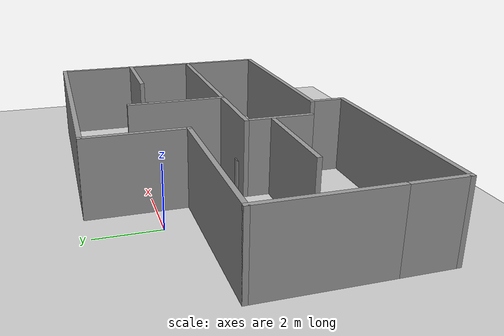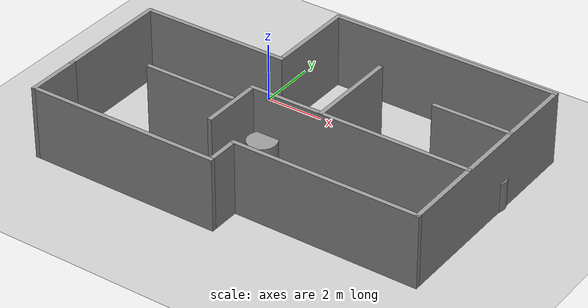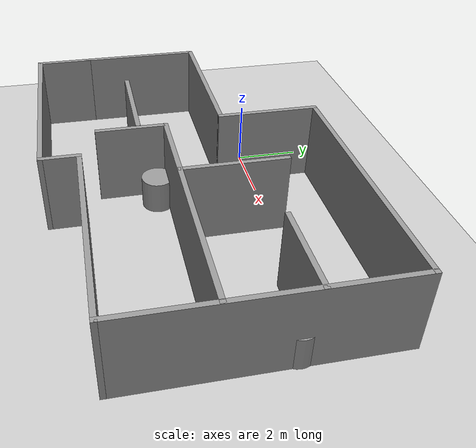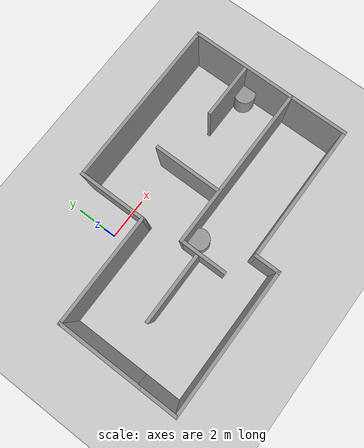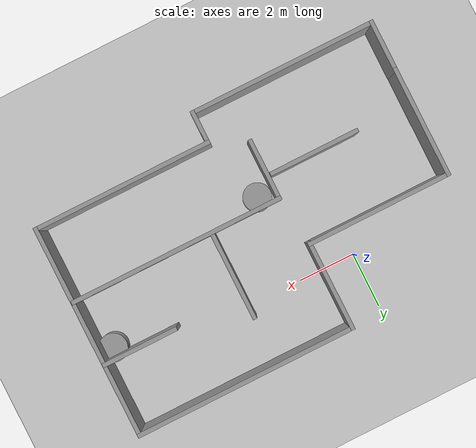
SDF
<sdf version="1.7">
 <world name="default">
  <light name="sun" type="directional">
   <pose>0 0 10 0 -0 0</pose>
   <diffuse>0.8 0.8 0.8 1</diffuse>
   <specular>0.2 0.2 0.2 1</specular>
   <attenuation>
    <range>1000</range>
    <constant>0.9</constant>
    <linear>0.01</linear>
    <quadratic>0.001</quadratic>
   </attenuation>
   <direction>-0.5 0.1 -0.9</direction>
   <spot><inner_angle>0</inner_angle><outer_angle>0</outer_angle><falloff>0</falloff></spot>
  </light>
  <model name="ground_plane">
   <static>1</static>
   <link name="link">
    <collision name="collision">
     <geometry><plane><normal>0 0 1</normal><size>100 100</size></plane></geometry>
     <surface><friction><ode><mu>100</mu><mu2>50</mu2></ode></friction></surface>
    </collision>
    <visual name="visual">
     <cast_shadows>0</cast_shadows>
     <geometry><plane><normal>0 0 1</normal><size>100 100</size></plane></geometry>
     <material>
      <script><uri>file://media/materials/scripts/gazebo.material</uri><name>Gazebo/Grey</name></script>
     </material>
    </visual>
   </link>
  </model>
  <gravity>0 0 -9.8</gravity>
  <magnetic_field>6e-06 2.3e-05 -4.2e-05</magnetic_field>
  <atmosphere type="adiabatic"/>
  <physics type="ode">
   <max_step_size>0.001</max_step_size>
   <real_time_factor>1</real_time_factor>
   <real_time_update_rate>1000</real_time_update_rate>
  </physics>
  <scene><ambient>0.4 0.4 0.4 1</ambient><background>0.7 0.7 0.7 1</background><shadows>1</shadows></scene>
  <audio><device>default</device></audio>
  <spherical_coordinates>
   <surface_model>EARTH_WGS84</surface_model>
   <latitude_deg>0</latitude_deg>
   <longitude_deg>0</longitude_deg>
   <elevation>0</elevation>
   <heading_deg>0</heading_deg>
  </spherical_coordinates>
  <model name="Untitled">
   <pose>2.615 -2.3 0 0 -0 0</pose>
   <link name="Wall_1">
    <collision name="Wall_1_Collision">
     <geometry><box><size>4 0.15 2.5</size></box></geometry>
     <pose>0 0 1.25 0 -0 0</pose>
    </collision>
    <visual name="Wall_1_Visual">
     <pose>0 0 1.25 0 -0 0</pose>
     <geometry><box><size>4 0.15 2.5</size></box></geometry>
     <material>
      <script><uri>file://media/materials/scripts/gazebo.material</uri><name>Gazebo/Grey</name></script>
      <ambient>1 1 1 1</ambient>
     </material>
     <meta><layer>0</layer></meta>
    </visual>
    <pose>-6.475 -0.675 0 0 -0 -1.5708</pose>
   </link>
   <link name="Wall_10">
    <collision name="Wall_10_Collision">
     <geometry><box><size>1.9 0.15 2.5</size></box></geometry>
     <pose>0 0 1.25 0 -0 0</pose>
    </collision>
    <visual name="Wall_10_Visual">
     <pose>0 0 1.25 0 -0 0</pose>
     <geometry><box><size>1.9 0.15 2.5</size></box></geometry>
     <material>
      <script><uri>file://media/materials/scripts/gazebo.material</uri><name>Gazebo/Grey</name></script>
      <ambient>1 1 1 1</ambient>
     </material>
     <meta><layer>0</layer></meta>
    </visual>
    <pose>-6.475 -3.475 0 0 -0 1.5708</pose>
   </link>
   <link name="Wall_12">
    <collision name="Wall_12_Collision">
     <geometry><box><size>7.75 0.15 2.5</size></box></geometry>
     <pose>0 0 1.25 0 -0 0</pose>
    </collision>
    <visual name="Wall_12_Visual">
     <pose>0 0 1.25 0 -0 0</pose>
     <geometry><box><size>7.75 0.15 2.5</size></box></geometry>
     <material>
      <script><uri>file://media/materials/scripts/gazebo.material</uri><name>Gazebo/Grey</name></script>
      <ambient>1 1 1 1</ambient>
     </material>
     <meta><layer>0</layer></meta>
    </visual>
    <pose>2.65306 -0.545137 0 0 -0 0</pose>
   </link>
   <link name="Wall_14">
    <collision name="Wall_14_Collision">
     <geometry><box><size>2.25 0.15 2.5</size></box></geometry>
     <pose>0 0 1.25 0 -0 0</pose>
    </collision>
    <visual name="Wall_14_Visual">
     <pose>0 0 1.25 0 -0 0</pose>
     <geometry><box><size>2.25 0.15 2.5</size></box></geometry>
     <material>
      <script><uri>file://media/materials/scripts/gazebo.material</uri><name>Gazebo/Grey</name></script>
      <ambient>1 1 1 1</ambient>
     </material>
     <meta><layer>0</layer></meta>
    </visual>
    <pose>-1.14694 -1.59514 0 0 -0 -1.5708</pose>
   </link>
   <link name="Wall_16">
    <collision name="Wall_16_Collision">
     <geometry><box><size>3.25 0.15 2.5</size></box></geometry>
     <pose>0 0 1.25 0 -0 0</pose>
    </collision>
    <visual name="Wall_16_Visual">
     <pose>0 0 1.25 0 -0 0</pose>
     <geometry><box><size>3.25 0.15 2.5</size></box></geometry>
     <material>
      <script><uri>file://media/materials/scripts/gazebo.material</uri><name>Gazebo/Grey</name></script>
      <ambient>1 1 1 1</ambient>
     </material>
     <meta><layer>0</layer></meta>
    </visual>
    <pose>-2.86101 -1.38602 0 0 -0 3.14159</pose>
   </link>
   <link name="Wall_18">
    <collision name="Wall_18_Collision">
     <geometry><box><size>3.25 0.15 2.5</size></box></geometry>
     <pose>0 0 1.25 0 -0 0</pose>
    </collision>
    <visual name="Wall_18_Visual">
     <pose>0 0 1.25 0 -0 0</pose>
     <geometry><box><size>3.25 0.15 2.5</size></box></geometry>
     <material>
      <script><uri>file://media/materials/scripts/gazebo.material</uri><name>Gazebo/Grey</name></script>
      <ambient>1 1 1 1</ambient>
     </material>
     <meta><layer>0</layer></meta>
    </visual>
    <pose>1.3552 1.02537 0 0 -0 1.5708</pose>
   </link>
   <link name="Wall_20">
    <collision name="Wall_20_Collision">
     <geometry><box><size>2.75 0.15 2.5</size></box></geometry>
     <pose>0 0 1.25 0 -0 0</pose>
    </collision>
    <visual name="Wall_20_Visual">
     <pose>0 0 1.25 0 -0 0</pose>
     <geometry><box><size>2.75 0.15 2.5</size></box></geometry>
     <material>
      <script><uri>file://media/materials/scripts/gazebo.material</uri><name>Gazebo/Grey</name></script>
      <ambient>1 1 1 1</ambient>
     </material>
     <meta><layer>0</layer></meta>
    </visual>
    <pose>5.16923 1.75756 0 0 -0 0</pose>
   </link>
   <link name="Wall_3">
    <collision name="Wall_3_Collision">
     <geometry><box><size>5.25 0.15 2.5</size></box></geometry>
     <pose>0 0 1.25 0 -0 0</pose>
    </collision>
    <visual name="Wall_3_Visual">
     <pose>0 0 1.25 0 -0 0</pose>
     <geometry><box><size>5.25 0.15 2.5</size></box></geometry>
     <material>
      <script><uri>file://media/materials/scripts/gazebo.material</uri><name>Gazebo/Grey</name></script>
      <ambient>1 1 1 1</ambient>
     </material>
     <meta><layer>0</layer></meta>
    </visual>
    <pose>-3.925 1.25 0 0 -0 0</pose>
   </link>
   <link name="Wall_4">
    <collision name="Wall_4_Collision">
     <geometry><box><size>3.25 0.15 2.5</size></box></geometry>
     <pose>0 0 1.25 0 -0 0</pose>
    </collision>
    <visual name="Wall_4_Visual">
     <pose>0 0 1.25 0 -0 0</pose>
     <geometry><box><size>3.25 0.15 2.5</size></box></geometry>
     <material>
      <script><uri>file://media/materials/scripts/gazebo.material</uri><name>Gazebo/Grey</name></script>
      <ambient>1 1 1 1</ambient>
     </material>
     <meta><layer>0</layer></meta>
    </visual>
    <pose>-1.375 2.8 0 0 -0 1.5708</pose>
   </link>
   <link name="Wall_5">
    <collision name="Wall_5_Collision">
     <geometry><box><size>8 0.15 2.5</size></box></geometry>
     <pose>0 0 1.25 0 -0 0</pose>
    </collision>
    <visual name="Wall_5_Visual">
     <pose>0 0 1.25 0 -0 0</pose>
     <geometry><box><size>8 0.15 2.5</size></box></geometry>
     <material>
      <script><uri>file://media/materials/scripts/gazebo.material</uri><name>Gazebo/Grey</name></script>
      <ambient>1 1 1 1</ambient>
     </material>
     <meta><layer>0</layer></meta>
    </visual>
    <pose>2.55 4.35 0 0 -0 0</pose>
   </link>
   <link name="Wall_6">
    <collision name="Wall_6_Collision">
     <geometry><box><size>7.75 0.15 2.5</size></box></geometry>
     <pose>0 0 1.25 0 -0 0</pose>
    </collision>
    <visual name="Wall_6_Visual">
     <pose>0 0 1.25 0 -0 0</pose>
     <geometry><box><size>7.75 0.15 2.5</size></box></geometry>
     <material>
      <script><uri>file://media/materials/scripts/gazebo.material</uri><name>Gazebo/Grey</name></script>
      <ambient>1 1 1 1</ambient>
     </material>
     <meta><layer>0</layer></meta>
    </visual>
    <pose>6.475 0.55 0 0 -0 -1.5708</pose>
   </link>
   <link name="Wall_7">
    <collision name="Wall_7_Collision">
     <geometry><box><size>6.5 0.15 2.5</size></box></geometry>
     <pose>0 0 1.25 0 -0 0</pose>
    </collision>
    <visual name="Wall_7_Visual">
     <pose>0 0 1.25 0 -0 0</pose>
     <geometry><box><size>6.5 0.15 2.5</size></box></geometry>
     <material>
      <script><uri>file://media/materials/scripts/gazebo.material</uri><name>Gazebo/Grey</name></script>
      <ambient>1 1 1 1</ambient>
     </material>
     <meta><layer>0</layer></meta>
    </visual>
    <pose>3.3 -3.25 0 0 -0 3.14159</pose>
   </link>
   <link name="Wall_8">
    <collision name="Wall_8_Collision">
     <geometry><box><size>1.25 0.15 2.5</size></box></geometry>
     <pose>0 0 1.25 0 -0 0</pose>
    </collision>
    <visual name="Wall_8_Visual">
     <pose>0 0 1.25 0 -0 0</pose>
     <geometry><box><size>1.25 0.15 2.5</size></box></geometry>
     <material>
      <script><uri>file://media/materials/scripts/gazebo.material</uri><name>Gazebo/Grey</name></script>
      <ambient>1 1 1 1</ambient>
     </material>
     <meta><layer>0</layer></meta>
    </visual>
    <pose>0.125 -3.8 0 0 -0 -1.5708</pose>
   </link>
   <link name="Wall_9">
    <collision name="Wall_9_Collision">
     <geometry><box><size>6.75 0.15 2.5</size></box></geometry>
     <pose>0 0 1.25 0 -0 0</pose>
    </collision>
    <visual name="Wall_9_Visual">
     <pose>0 0 1.25 0 -0 0</pose>
     <geometry><box><size>6.75 0.15 2.5</size></box></geometry>
     <material>
      <script><uri>file://media/materials/scripts/gazebo.material</uri><name>Gazebo/Grey</name></script>
      <ambient>1 1 1 1</ambient>
     </material>
     <meta><layer>0</layer></meta>
    </visual>
    <pose>-3.175 -4.35 0 0 -0 3.14159</pose>
   </link>
   <static>1</static>
  </model>
  <model name="unit_cylinder">
   <pose>2.07276 -3.22767 0.499994 -4e-06 -3e-06 -0</pose>
   <link name="link">
    <inertial>
     <mass>1</mass>
     <inertia><ixx>0.145833</ixx><ixy>0</ixy><ixz>0</ixz><iyy>0.145833</iyy><iyz>0</iyz><izz>0.125</izz></inertia>
    </inertial>
    <collision name="collision">
     <geometry><cylinder><radius>0.5</radius><length>1</length></cylinder></geometry>
    </collision>
    <visual name="visual">
     <geometry><cylinder><radius>0.5</radius><length>1</length></cylinder></geometry>
     <material>
      <script><name>Gazebo/Grey</name><uri>file://media/materials/scripts/gazebo.material</uri></script>
     </material>
    </visual>
   </link>
  </model>
  <model name="unit_cylinder_0">
   <pose>8.71803 -0.878719 0.499994 -4e-06 -3e-06 -0</pose>
   <link name="link">
    <inertial>
     <mass>1</mass>
     <inertia><ixx>0.145833</ixx><ixy>0</ixy><ixz>0</ixz><iyy>0.145833</iyy><iyz>0</iyz><izz>0.125</izz></inertia>
    </inertial>
    <collision name="collision">
     <geometry><cylinder><radius>0.5</radius><length>1</length></cylinder></geometry>
    </collision>
    <visual name="visual">
     <geometry><cylinder><radius>0.5</radius><length>1</length></cylinder></geometry>
     <material>
      <script><name>Gazebo/Grey</name><uri>file://media/materials/scripts/gazebo.material</uri></script>
     </material>
    </visual>
   </link>
  </model>
 </world>
</sdf>
